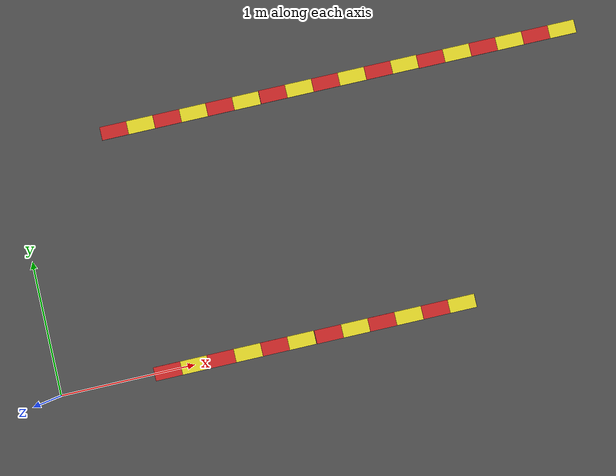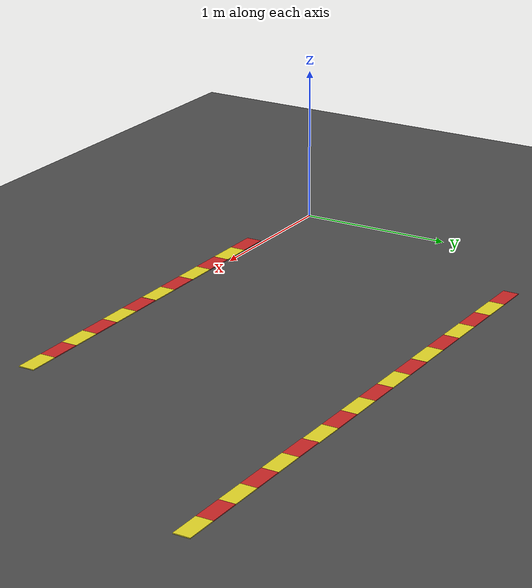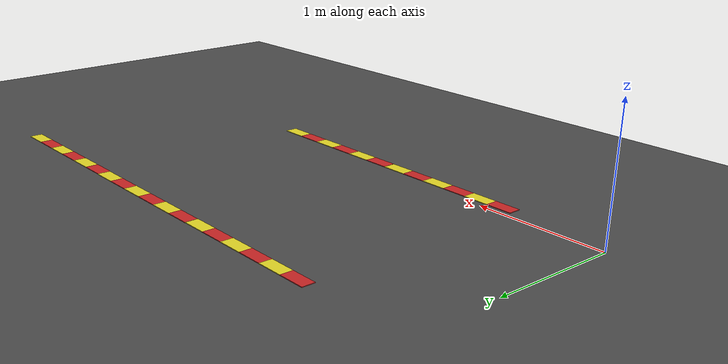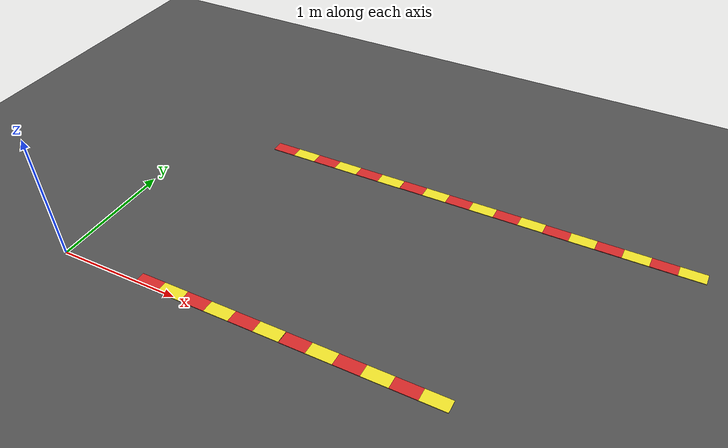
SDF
<sdf version="1.6">
 <world name="default">
  <model name="ground_plane">
   <static>1</static>
   <link name="link">
    <collision name="collision">
     <geometry><plane><normal>0 0 1</normal><size>40 40</size></plane></geometry>
     <surface><friction><ode><mu>100</mu><mu2>50</mu2></ode></friction></surface>
    </collision>
    <visual name="visual">
     <cast_shadows>0</cast_shadows>
     <geometry><plane><normal>0 0 1</normal><size>40 40</size></plane></geometry>
     <material>
      <script><uri>file://media/materials/scripts/gazebo.material</uri><name>Gazebo/Grey</name></script>
     </material>
    </visual>
    <velocity_decay><linear>0</linear><angular>0</angular></velocity_decay>
   </link>
  </model>
  <model name="asphalt_plane">
   <static>1</static>
   <link name="link">
    <collision name="collision"><geometry><box><size>40 40 0.1</size></box></geometry></collision>
    <visual name="visual">
     <cast_shadows>0</cast_shadows>
     <geometry><box><size>40 40 0.1</size></box></geometry>
     <material>
      <script>
       <uri>model://asphalt_plane/materials/scripts</uri>
       <uri>model://asphalt_plane/materials/textures</uri>
       <name>vrc/asphalt</name>
      </script>
     </material>
    </visual>
    <velocity_decay><linear>0</linear><angular>0</angular></velocity_decay>
   </link>
   <pose>0.433796 -0.497378 0 0 -0 0</pose>
  </model>
  <model name="DashLine_clone">
   <link name="link">
    <inertial>
     <mass>1</mass>
     <inertia>
      <ixx>0.166667</ixx>
      <ixy>0</ixy>
      <ixz>0</ixz>
      <iyy>0.166667</iyy>
      <iyz>0</iyz>
      <izz>0.166667</izz>
     </inertia>
    </inertial>
    <gravity>0</gravity>
    <visual name="ModelPreview_3::link::visual_3">
     <geometry><box><size>0.2 0.1 0.01</size></box></geometry>
     <material>
      <script><name>Gazebo/Yellow</name><uri>file://media/materials/scripts/gazebo.material</uri></script>
      <shader type="vertex"><normal_map>__default__</normal_map></shader>
      <ambient>0.988 0.914 0.31 1</ambient>
      <diffuse>0.7 0.7 0.7 1</diffuse>
      <specular>0.01 0.01 0.01 1</specular>
      <emissive>0 0 0 1</emissive>
     </material>
     <pose>0.2 0 0 0 -0 0</pose>
    </visual>
    <visual name="ModelPreview_6::link::visual_5">
     <geometry><box><size>0.2 0.1 0.01</size></box></geometry>
     <material>
      <script><name>Gazebo/Yellow</name><uri>file://media/materials/scripts/gazebo.material</uri></script>
      <shader type="vertex"><normal_map>__default__</normal_map></shader>
      <ambient>0.988 0.914 0.31 1</ambient>
      <diffuse>0.7 0.7 0.7 1</diffuse>
      <specular>0.01 0.01 0.01 1</specular>
      <emissive>0 0 0 1</emissive>
     </material>
     <pose>0.6 0 0 0 -0 0</pose>
    </visual>
    <visual name="ModelPreview_3::link::visual_4">
     <geometry><box><size>0.2 0.1 0.01</size></box></geometry>
     <material>
      <script><name>Gazebo/Red</name><uri>file://media/materials/scripts/gazebo.material</uri></script>
      <shader type="vertex"><normal_map>__default__</normal_map></shader>
      <ambient>0.937 0.161 0.161 1</ambient>
      <diffuse>0.7 0.7 0.7 1</diffuse>
      <specular>0.01 0.01 0.01 1</specular>
      <emissive>0 0 0 1</emissive>
     </material>
     <pose>0.4 0 0 0 -0 0</pose>
    </visual>
    <visual name="ModelPreview_3::link::visual_2">
     <geometry><box><size>0.2 0.1 0.01</size></box></geometry>
     <material>
      <script><name>Gazebo/Red</name><uri>file://media/materials/scripts/gazebo.material</uri></script>
      <shader type="vertex"><normal_map>__default__</normal_map></shader>
      <ambient>0.937 0.161 0.161 1</ambient>
      <diffuse>0.7 0.7 0.7 1</diffuse>
      <specular>0.01 0.01 0.01 1</specular>
      <emissive>0 0 0 1</emissive>
     </material>
    </visual>
    <visual name="visual">
     <geometry><box><size>0.2 0.1 0.01</size></box></geometry>
     <material>
      <script><name>Gazebo/Red</name><uri>file://media/materials/scripts/gazebo.material</uri></script>
      <shader type="vertex"><normal_map>__default__</normal_map></shader>
      <ambient>0.8 0 0 1</ambient>
      <diffuse>0.7 0.7 0.7 1</diffuse>
      <specular>0.01 0.01 0.01 1</specular>
      <emissive>0 0 0 1</emissive>
     </material>
     <pose>-0.4 0 0 0 -0 0</pose>
    </visual>
    <visual name="ModelPreview_3::link::visual_1">
     <geometry><box><size>0.2 0.1 0.01</size></box></geometry>
     <material>
      <script><name>Gazebo/Yellow</name><uri>file://media/materials/scripts/gazebo.material</uri></script>
      <shader type="vertex"><normal_map>__default__</normal_map></shader>
      <ambient>0.988 0.914 0.31 1</ambient>
      <diffuse>0.7 0.7 0.7 1</diffuse>
      <specular>0.01 0.01 0.01 1</specular>
      <emissive>0 0 0 1</emissive>
     </material>
     <pose>-0.2 0 0 0 -0 0</pose>
    </visual>
   </link>
   <static>0</static>
   <pose>1.20456 0.000698 0.05 0 -0 0</pose>
  </model>
  <model name="DashLine_clone_clone">
   <link name="link">
    <inertial>
     <mass>1</mass>
     <inertia>
      <ixx>0.166667</ixx>
      <ixy>0</ixy>
      <ixz>0</ixz>
      <iyy>0.166667</iyy>
      <iyz>0</iyz>
      <izz>0.166667</izz>
     </inertia>
    </inertial>
    <gravity>0</gravity>
    <visual name="ModelPreview_3::link::visual_3">
     <geometry><box><size>0.2 0.1 0.01</size></box></geometry>
     <material>
      <script><name>Gazebo/Yellow</name><uri>file://media/materials/scripts/gazebo.material</uri></script>
      <shader type="vertex"><normal_map>__default__</normal_map></shader>
      <ambient>0.988 0.914 0.31 1</ambient>
      <diffuse>0.7 0.7 0.7 1</diffuse>
      <specular>0.01 0.01 0.01 1</specular>
      <emissive>0 0 0 1</emissive>
     </material>
     <pose>0.2 0 0 0 -0 0</pose>
    </visual>
    <visual name="ModelPreview_6::link::visual_5">
     <geometry><box><size>0.2 0.1 0.01</size></box></geometry>
     <material>
      <script><name>Gazebo/Yellow</name><uri>file://media/materials/scripts/gazebo.material</uri></script>
      <shader type="vertex"><normal_map>__default__</normal_map></shader>
      <ambient>0.988 0.914 0.31 1</ambient>
      <diffuse>0.7 0.7 0.7 1</diffuse>
      <specular>0.01 0.01 0.01 1</specular>
      <emissive>0 0 0 1</emissive>
     </material>
     <pose>0.6 0 0 0 -0 0</pose>
    </visual>
    <visual name="ModelPreview_3::link::visual_4">
     <geometry><box><size>0.2 0.1 0.01</size></box></geometry>
     <material>
      <script><name>Gazebo/Red</name><uri>file://media/materials/scripts/gazebo.material</uri></script>
      <shader type="vertex"><normal_map>__default__</normal_map></shader>
      <ambient>0.937 0.161 0.161 1</ambient>
      <diffuse>0.7 0.7 0.7 1</diffuse>
      <specular>0.01 0.01 0.01 1</specular>
      <emissive>0 0 0 1</emissive>
     </material>
     <pose>0.4 0 0 0 -0 0</pose>
    </visual>
    <visual name="ModelPreview_3::link::visual_2">
     <geometry><box><size>0.2 0.1 0.01</size></box></geometry>
     <material>
      <script><name>Gazebo/Red</name><uri>file://media/materials/scripts/gazebo.material</uri></script>
      <shader type="vertex"><normal_map>__default__</normal_map></shader>
      <ambient>0.937 0.161 0.161 1</ambient>
      <diffuse>0.7 0.7 0.7 1</diffuse>
      <specular>0.01 0.01 0.01 1</specular>
      <emissive>0 0 0 1</emissive>
     </material>
    </visual>
    <visual name="visual">
     <geometry><box><size>0.2 0.1 0.01</size></box></geometry>
     <material>
      <script><name>Gazebo/Red</name><uri>file://media/materials/scripts/gazebo.material</uri></script>
      <shader type="vertex"><normal_map>__default__</normal_map></shader>
      <ambient>0.8 0 0 1</ambient>
      <diffuse>0.7 0.7 0.7 1</diffuse>
      <specular>0.01 0.01 0.01 1</specular>
      <emissive>0 0 0 1</emissive>
     </material>
     <pose>-0.4 0 0 0 -0 0</pose>
    </visual>
    <visual name="ModelPreview_3::link::visual_1">
     <geometry><box><size>0.2 0.1 0.01</size></box></geometry>
     <material>
      <script><name>Gazebo/Yellow</name><uri>file://media/materials/scripts/gazebo.material</uri></script>
      <shader type="vertex"><normal_map>__default__</normal_map></shader>
      <ambient>0.988 0.914 0.31 1</ambient>
      <diffuse>0.7 0.7 0.7 1</diffuse>
      <specular>0.01 0.01 0.01 1</specular>
      <emissive>0 0 0 1</emissive>
     </material>
     <pose>-0.2 0 0 0 -0 0</pose>
    </visual>
   </link>
   <static>0</static>
   <pose>2.40797 -0.000483 0.05 0 -0 0</pose>
  </model>
  <model name="DashLine_clone_clone_clone_8">
   <link name="link">
    <inertial>
     <mass>1</mass>
     <inertia>
      <ixx>0.166667</ixx>
      <ixy>0</ixy>
      <ixz>0</ixz>
      <iyy>0.166667</iyy>
      <iyz>0</iyz>
      <izz>0.166667</izz>
     </inertia>
    </inertial>
    <gravity>0</gravity>
    <visual name="ModelPreview_3::link::visual_3">
     <geometry><box><size>0.2 0.1 0.01</size></box></geometry>
     <material>
      <script><name>Gazebo/Yellow</name><uri>file://media/materials/scripts/gazebo.material</uri></script>
      <shader type="vertex"><normal_map>__default__</normal_map></shader>
      <ambient>0.988 0.914 0.31 1</ambient>
      <diffuse>0.7 0.7 0.7 1</diffuse>
      <specular>0.01 0.01 0.01 1</specular>
      <emissive>0 0 0 1</emissive>
     </material>
     <pose>0.2 0 0 0 -0 0</pose>
    </visual>
    <visual name="ModelPreview_6::link::visual_5">
     <geometry><box><size>0.2 0.1 0.01</size></box></geometry>
     <material>
      <script><name>Gazebo/Yellow</name><uri>file://media/materials/scripts/gazebo.material</uri></script>
      <shader type="vertex"><normal_map>__default__</normal_map></shader>
      <ambient>0.988 0.914 0.31 1</ambient>
      <diffuse>0.7 0.7 0.7 1</diffuse>
      <specular>0.01 0.01 0.01 1</specular>
      <emissive>0 0 0 1</emissive>
     </material>
     <pose>0.6 0 0 0 -0 0</pose>
    </visual>
    <visual name="ModelPreview_3::link::visual_4">
     <geometry><box><size>0.2 0.1 0.01</size></box></geometry>
     <material>
      <script><name>Gazebo/Red</name><uri>file://media/materials/scripts/gazebo.material</uri></script>
      <shader type="vertex"><normal_map>__default__</normal_map></shader>
      <ambient>0.937 0.161 0.161 1</ambient>
      <diffuse>0.7 0.7 0.7 1</diffuse>
      <specular>0.01 0.01 0.01 1</specular>
      <emissive>0 0 0 1</emissive>
     </material>
     <pose>0.4 0 0 0 -0 0</pose>
    </visual>
    <visual name="ModelPreview_3::link::visual_2">
     <geometry><box><size>0.2 0.1 0.01</size></box></geometry>
     <material>
      <script><name>Gazebo/Red</name><uri>file://media/materials/scripts/gazebo.material</uri></script>
      <shader type="vertex"><normal_map>__default__</normal_map></shader>
      <ambient>0.937 0.161 0.161 1</ambient>
      <diffuse>0.7 0.7 0.7 1</diffuse>
      <specular>0.01 0.01 0.01 1</specular>
      <emissive>0 0 0 1</emissive>
     </material>
    </visual>
    <visual name="visual">
     <geometry><box><size>0.2 0.1 0.01</size></box></geometry>
     <material>
      <script><name>Gazebo/Red</name><uri>file://media/materials/scripts/gazebo.material</uri></script>
      <shader type="vertex"><normal_map>__default__</normal_map></shader>
      <ambient>0.8 0 0 1</ambient>
      <diffuse>0.7 0.7 0.7 1</diffuse>
      <specular>0.01 0.01 0.01 1</specular>
      <emissive>0 0 0 1</emissive>
     </material>
     <pose>-0.4 0 0 0 -0 0</pose>
    </visual>
    <visual name="ModelPreview_3::link::visual_1">
     <geometry><box><size>0.2 0.1 0.01</size></box></geometry>
     <material>
      <script><name>Gazebo/Yellow</name><uri>file://media/materials/scripts/gazebo.material</uri></script>
      <shader type="vertex"><normal_map>__default__</normal_map></shader>
      <ambient>0.988 0.914 0.31 1</ambient>
      <diffuse>0.7 0.7 0.7 1</diffuse>
      <specular>0.01 0.01 0.01 1</specular>
      <emissive>0 0 0 1</emissive>
     </material>
     <pose>-0.2 0 0 0 -0 0</pose>
    </visual>
   </link>
   <static>0</static>
   <pose>3.60024 1.80846 0.05 0 -0 0</pose>
  </model>
  <model name="DashLine_clone_clone_clone_9">
   <link name="link">
    <inertial>
     <mass>1</mass>
     <inertia>
      <ixx>0.166667</ixx>
      <ixy>0</ixy>
      <ixz>0</ixz>
      <iyy>0.166667</iyy>
      <iyz>0</iyz>
      <izz>0.166667</izz>
     </inertia>
    </inertial>
    <gravity>0</gravity>
    <visual name="ModelPreview_3::link::visual_3">
     <geometry><box><size>0.2 0.1 0.01</size></box></geometry>
     <material>
      <script><name>Gazebo/Yellow</name><uri>file://media/materials/scripts/gazebo.material</uri></script>
      <shader type="vertex"><normal_map>__default__</normal_map></shader>
      <ambient>0.988 0.914 0.31 1</ambient>
      <diffuse>0.7 0.7 0.7 1</diffuse>
      <specular>0.01 0.01 0.01 1</specular>
      <emissive>0 0 0 1</emissive>
     </material>
     <pose>0.2 0 0 0 -0 0</pose>
    </visual>
    <visual name="ModelPreview_6::link::visual_5">
     <geometry><box><size>0.2 0.1 0.01</size></box></geometry>
     <material>
      <script><name>Gazebo/Yellow</name><uri>file://media/materials/scripts/gazebo.material</uri></script>
      <shader type="vertex"><normal_map>__default__</normal_map></shader>
      <ambient>0.988 0.914 0.31 1</ambient>
      <diffuse>0.7 0.7 0.7 1</diffuse>
      <specular>0.01 0.01 0.01 1</specular>
      <emissive>0 0 0 1</emissive>
     </material>
     <pose>0.6 0 0 0 -0 0</pose>
    </visual>
    <visual name="ModelPreview_3::link::visual_4">
     <geometry><box><size>0.2 0.1 0.01</size></box></geometry>
     <material>
      <script><name>Gazebo/Red</name><uri>file://media/materials/scripts/gazebo.material</uri></script>
      <shader type="vertex"><normal_map>__default__</normal_map></shader>
      <ambient>0.937 0.161 0.161 1</ambient>
      <diffuse>0.7 0.7 0.7 1</diffuse>
      <specular>0.01 0.01 0.01 1</specular>
      <emissive>0 0 0 1</emissive>
     </material>
     <pose>0.4 0 0 0 -0 0</pose>
    </visual>
    <visual name="ModelPreview_3::link::visual_2">
     <geometry><box><size>0.2 0.1 0.01</size></box></geometry>
     <material>
      <script><name>Gazebo/Red</name><uri>file://media/materials/scripts/gazebo.material</uri></script>
      <shader type="vertex"><normal_map>__default__</normal_map></shader>
      <ambient>0.937 0.161 0.161 1</ambient>
      <diffuse>0.7 0.7 0.7 1</diffuse>
      <specular>0.01 0.01 0.01 1</specular>
      <emissive>0 0 0 1</emissive>
     </material>
    </visual>
    <visual name="visual">
     <geometry><box><size>0.2 0.1 0.01</size></box></geometry>
     <material>
      <script><name>Gazebo/Red</name><uri>file://media/materials/scripts/gazebo.material</uri></script>
      <shader type="vertex"><normal_map>__default__</normal_map></shader>
      <ambient>0.8 0 0 1</ambient>
      <diffuse>0.7 0.7 0.7 1</diffuse>
      <specular>0.01 0.01 0.01 1</specular>
      <emissive>0 0 0 1</emissive>
     </material>
     <pose>-0.4 0 0 0 -0 0</pose>
    </visual>
    <visual name="ModelPreview_3::link::visual_1">
     <geometry><box><size>0.2 0.1 0.01</size></box></geometry>
     <material>
      <script><name>Gazebo/Yellow</name><uri>file://media/materials/scripts/gazebo.material</uri></script>
      <shader type="vertex"><normal_map>__default__</normal_map></shader>
      <ambient>0.988 0.914 0.31 1</ambient>
      <diffuse>0.7 0.7 0.7 1</diffuse>
      <specular>0.01 0.01 0.01 1</specular>
      <emissive>0 0 0 1</emissive>
     </material>
     <pose>-0.2 0 0 0 -0 0</pose>
    </visual>
   </link>
   <static>0</static>
   <pose>2.40266 1.81213 0.05 0 -0 0</pose>
  </model>
  <model name="DashLine_clone_clone_clone_10">
   <link name="link">
    <inertial>
     <mass>1</mass>
     <inertia>
      <ixx>0.166667</ixx>
      <ixy>0</ixy>
      <ixz>0</ixz>
      <iyy>0.166667</iyy>
      <iyz>0</iyz>
      <izz>0.166667</izz>
     </inertia>
    </inertial>
    <gravity>0</gravity>
    <visual name="ModelPreview_3::link::visual_3">
     <geometry><box><size>0.2 0.1 0.01</size></box></geometry>
     <material>
      <script><name>Gazebo/Yellow</name><uri>file://media/materials/scripts/gazebo.material</uri></script>
      <shader type="vertex"><normal_map>__default__</normal_map></shader>
      <ambient>0.988 0.914 0.31 1</ambient>
      <diffuse>0.7 0.7 0.7 1</diffuse>
      <specular>0.01 0.01 0.01 1</specular>
      <emissive>0 0 0 1</emissive>
     </material>
     <pose>0.2 0 0 0 -0 0</pose>
    </visual>
    <visual name="ModelPreview_6::link::visual_5">
     <geometry><box><size>0.2 0.1 0.01</size></box></geometry>
     <material>
      <script><name>Gazebo/Yellow</name><uri>file://media/materials/scripts/gazebo.material</uri></script>
      <shader type="vertex"><normal_map>__default__</normal_map></shader>
      <ambient>0.988 0.914 0.31 1</ambient>
      <diffuse>0.7 0.7 0.7 1</diffuse>
      <specular>0.01 0.01 0.01 1</specular>
      <emissive>0 0 0 1</emissive>
     </material>
     <pose>0.6 0 0 0 -0 0</pose>
    </visual>
    <visual name="ModelPreview_3::link::visual_4">
     <geometry><box><size>0.2 0.1 0.01</size></box></geometry>
     <material>
      <script><name>Gazebo/Red</name><uri>file://media/materials/scripts/gazebo.material</uri></script>
      <shader type="vertex"><normal_map>__default__</normal_map></shader>
      <ambient>0.937 0.161 0.161 1</ambient>
      <diffuse>0.7 0.7 0.7 1</diffuse>
      <specular>0.01 0.01 0.01 1</specular>
      <emissive>0 0 0 1</emissive>
     </material>
     <pose>0.4 0 0 0 -0 0</pose>
    </visual>
    <visual name="ModelPreview_3::link::visual_2">
     <geometry><box><size>0.2 0.1 0.01</size></box></geometry>
     <material>
      <script><name>Gazebo/Red</name><uri>file://media/materials/scripts/gazebo.material</uri></script>
      <shader type="vertex"><normal_map>__default__</normal_map></shader>
      <ambient>0.937 0.161 0.161 1</ambient>
      <diffuse>0.7 0.7 0.7 1</diffuse>
      <specular>0.01 0.01 0.01 1</specular>
      <emissive>0 0 0 1</emissive>
     </material>
    </visual>
    <visual name="visual">
     <geometry><box><size>0.2 0.1 0.01</size></box></geometry>
     <material>
      <script><name>Gazebo/Red</name><uri>file://media/materials/scripts/gazebo.material</uri></script>
      <shader type="vertex"><normal_map>__default__</normal_map></shader>
      <ambient>0.8 0 0 1</ambient>
      <diffuse>0.7 0.7 0.7 1</diffuse>
      <specular>0.01 0.01 0.01 1</specular>
      <emissive>0 0 0 1</emissive>
     </material>
     <pose>-0.4 0 0 0 -0 0</pose>
    </visual>
    <visual name="ModelPreview_3::link::visual_1">
     <geometry><box><size>0.2 0.1 0.01</size></box></geometry>
     <material>
      <script><name>Gazebo/Yellow</name><uri>file://media/materials/scripts/gazebo.material</uri></script>
      <shader type="vertex"><normal_map>__default__</normal_map></shader>
      <ambient>0.988 0.914 0.31 1</ambient>
      <diffuse>0.7 0.7 0.7 1</diffuse>
      <specular>0.01 0.01 0.01 1</specular>
      <emissive>0 0 0 1</emissive>
     </material>
     <pose>-0.2 0 0 0 -0 0</pose>
    </visual>
   </link>
   <static>0</static>
   <pose>1.20083 1.81008 0.05 0 -0 0</pose>
  </model>
 </world>
</sdf>
